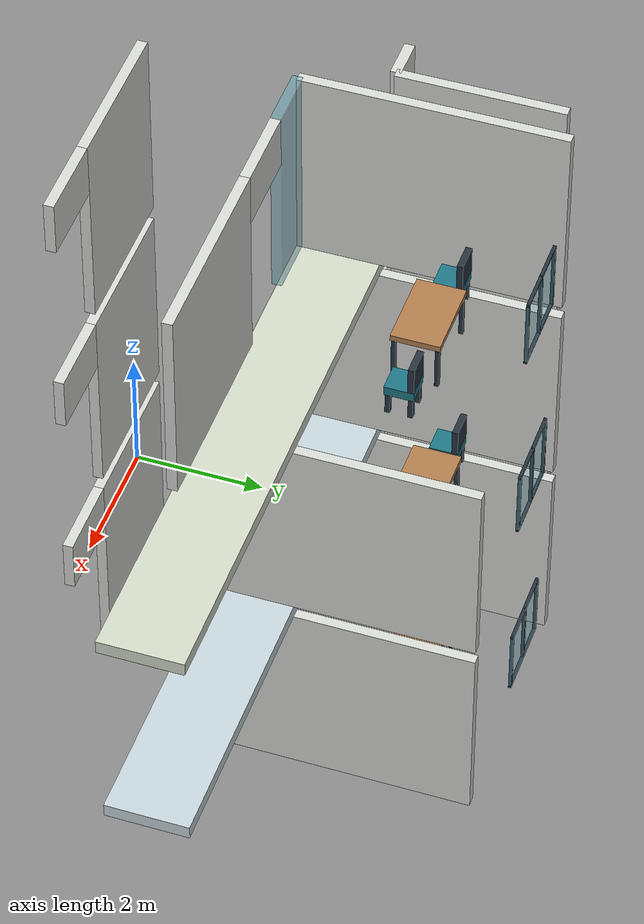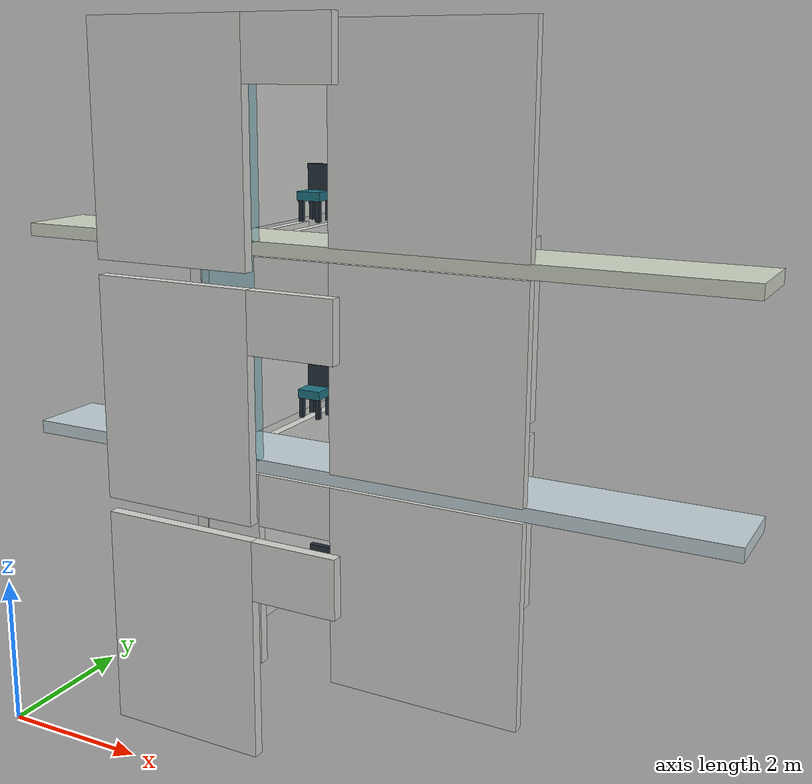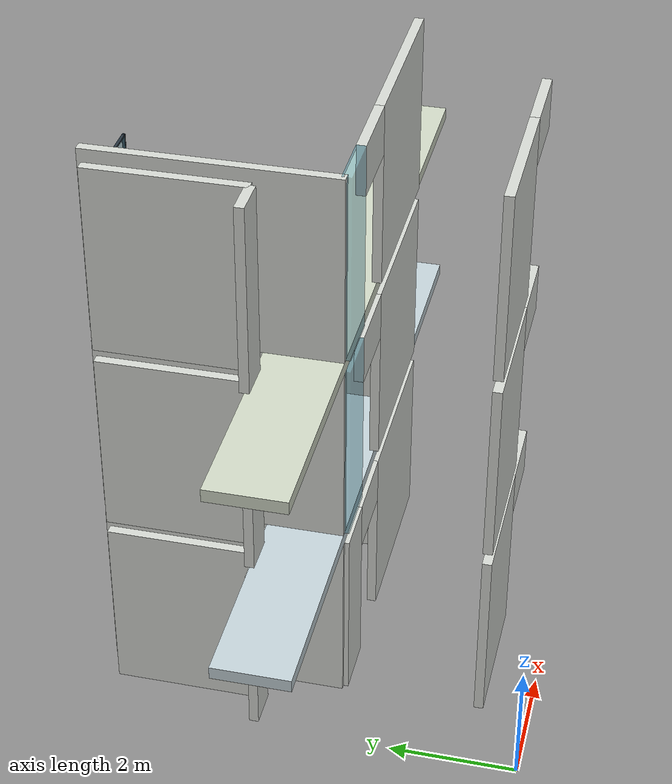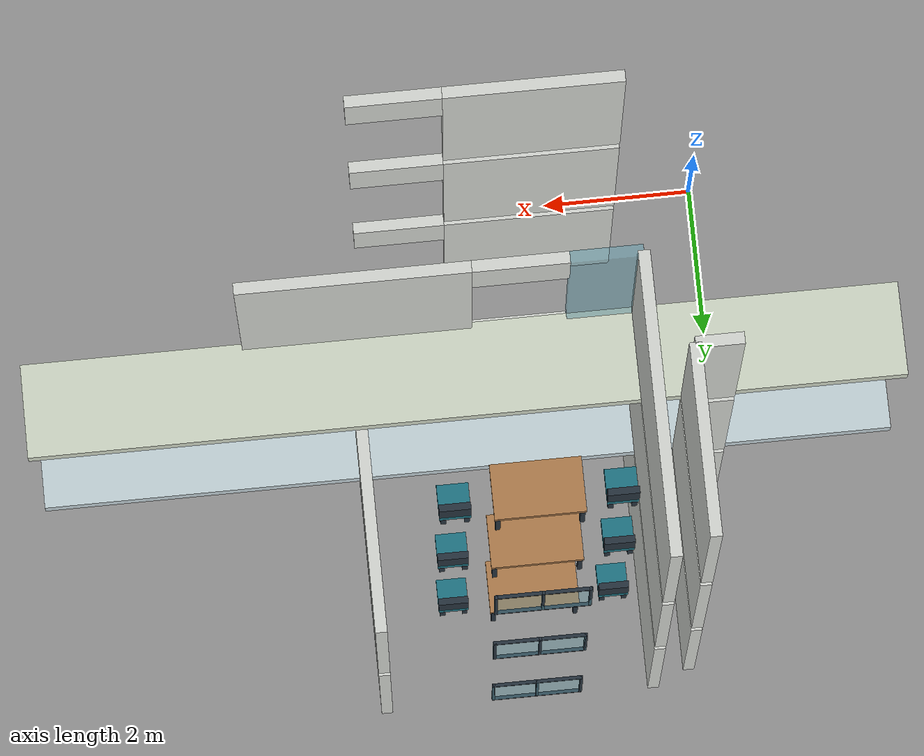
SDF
<sdf version="1.6">
 <world name="three_floor">
  <model name="f1_wall_025">
   <static>true</static>
   <pose>2.325 0.8 1.5 0 0 0</pose>
   <link name="f1_wall_025_link">
    <collision name="f1_wall_025_collision"><geometry><box><size>2.25 0.15 3</size></box></geometry></collision>
    <visual name="f1_wall_025_visual">
     <geometry><box><size>2.25 0.15 3</size></box></geometry>
     <material><ambient>.84 .85 .83 1</ambient><diffuse>.84 .85 .83 1</diffuse></material>
    </visual>
   </link>
  </model>
  <model name="f1_wall_034">
   <static>true</static>
   <pose>0.7 5.4 1.5 0 0 0</pose>
   <link name="f1_wall_034_link">
    <collision name="f1_wall_034_collision"><geometry><box><size>0.15 2.4 3</size></box></geometry></collision>
    <visual name="f1_wall_034_visual">
     <geometry><box><size>0.15 2.4 3</size></box></geometry>
     <material><ambient>.84 .85 .83 1</ambient><diffuse>.84 .85 .83 1</diffuse></material>
    </visual>
   </link>
  </model>
  <model name="f1_wall_037">
   <static>true</static>
   <pose>0.4 4.2 1.5 0 0 0</pose>
   <link name="f1_wall_037_link">
    <collision name="f1_wall_037_collision"><geometry><box><size>0.6 0.15 3</size></box></geometry></collision>
    <visual name="f1_wall_037_visual">
     <geometry><box><size>0.6 0.15 3</size></box></geometry>
     <material><ambient>.84 .85 .83 1</ambient><diffuse>.84 .85 .83 1</diffuse></material>
    </visual>
   </link>
  </model>
  <model name="f1_wall_038">
   <static>true</static>
   <pose>1.2 4.9 1.5 0 0 0</pose>
   <link name="f1_wall_038_link">
    <collision name="f1_wall_038_collision"><geometry><box><size>0.15 3.8 3</size></box></geometry></collision>
    <visual name="f1_wall_038_visual">
     <geometry><box><size>0.15 3.8 3</size></box></geometry>
     <material><ambient>.84 .85 .83 1</ambient><diffuse>.84 .85 .83 1</diffuse></material>
    </visual>
   </link>
  </model>
  <model name="f1_wall_039">
   <static>true</static>
   <pose>4.8 4.9 1.5 0 0 0</pose>
   <link name="f1_wall_039_link">
    <collision name="f1_wall_039_collision"><geometry><box><size>0.15 3.8 3</size></box></geometry></collision>
    <visual name="f1_wall_039_visual">
     <geometry><box><size>0.15 3.8 3</size></box></geometry>
     <material><ambient>.84 .85 .83 1</ambient><diffuse>.84 .85 .83 1</diffuse></material>
    </visual>
   </link>
  </model>
  <model name="f1_wall_040">
   <static>true</static>
   <pose>1.65 3 1.5 0 0 0</pose>
   <link name="f1_wall_040_link">
    <collision name="f1_wall_040_collision"><geometry><box><size>0.9 0.15 3</size></box></geometry></collision>
    <visual name="f1_wall_040_visual">
     <geometry><box><size>0.9 0.15 3</size></box></geometry>
     <material><ambient>.84 .85 .83 1</ambient><diffuse>.84 .85 .83 1</diffuse></material>
    </visual>
   </link>
  </model>
  <model name="f1_wall_041">
   <static>true</static>
   <pose>4.75 3 1.5 0 0 0</pose>
   <link name="f1_wall_041_link">
    <collision name="f1_wall_041_collision"><geometry><box><size>2.9 0.15 3</size></box></geometry></collision>
    <visual name="f1_wall_041_visual">
     <geometry><box><size>2.9 0.15 3</size></box></geometry>
     <material><ambient>.84 .85 .83 1</ambient><diffuse>.84 .85 .83 1</diffuse></material>
    </visual>
   </link>
  </model>
  <model name="f1_lintel_south_east_1">
   <static>true</static>
   <pose>4.05 0.8 2.6 0 0 0</pose>
   <link name="f1_lintel_south_east_1_link">
    <collision name="f1_lintel_south_east_1_collision">
     <geometry><box><size>1.2 0.15 0.8</size></box></geometry>
    </collision>
    <visual name="f1_lintel_south_east_1_visual">
     <geometry><box><size>1.2 0.15 0.8</size></box></geometry>
     <material><ambient>.84 .85 .83 1</ambient><diffuse>.84 .85 .83 1</diffuse></material>
    </visual>
   </link>
  </model>
  <model name="f1_lintel_north_west">
   <static>true</static>
   <pose>2.7 3 2.6 0 0 0</pose>
   <link name="f1_lintel_north_west_link">
    <collision name="f1_lintel_north_west_collision">
     <geometry><box><size>1.2 0.15 0.8</size></box></geometry>
    </collision>
    <visual name="f1_lintel_north_west_visual">
     <geometry><box><size>1.2 0.15 0.8</size></box></geometry>
     <material><ambient>.84 .85 .83 1</ambient><diffuse>.84 .85 .83 1</diffuse></material>
    </visual>
   </link>
  </model>
  <model name="f2_slab_03">
   <static>true</static>
   <pose>3.45 3.6 3.1 0 0 0</pose>
   <link name="f2_slab_03_link">
    <collision name="f2_slab_03_collision"><geometry><box><size>11.1 1.2 0.2</size></box></geometry></collision>
    <visual name="f2_slab_03_visual">
     <geometry><box><size>11.1 1.2 0.2</size></box></geometry>
     <material><ambient>0.77 0.83 0.85 1</ambient><diffuse>0.77 0.83 0.85 1</diffuse></material>
    </visual>
   </link>
  </model>
  <model name="f2_wall_025">
   <static>true</static>
   <pose>2.325 0.8 4.7 0 0 0</pose>
   <link name="f2_wall_025_link">
    <collision name="f2_wall_025_collision"><geometry><box><size>2.25 0.15 3</size></box></geometry></collision>
    <visual name="f2_wall_025_visual">
     <geometry><box><size>2.25 0.15 3</size></box></geometry>
     <material><ambient>.84 .85 .83 1</ambient><diffuse>.84 .85 .83 1</diffuse></material>
    </visual>
   </link>
  </model>
  <model name="f2_wall_034">
   <static>true</static>
   <pose>0.7 5.4 4.7 0 0 0</pose>
   <link name="f2_wall_034_link">
    <collision name="f2_wall_034_collision"><geometry><box><size>0.15 2.4 3</size></box></geometry></collision>
    <visual name="f2_wall_034_visual">
     <geometry><box><size>0.15 2.4 3</size></box></geometry>
     <material><ambient>.84 .85 .83 1</ambient><diffuse>.84 .85 .83 1</diffuse></material>
    </visual>
   </link>
  </model>
  <model name="f2_wall_037">
   <static>true</static>
   <pose>0.4 4.2 4.7 0 0 0</pose>
   <link name="f2_wall_037_link">
    <collision name="f2_wall_037_collision"><geometry><box><size>0.6 0.15 3</size></box></geometry></collision>
    <visual name="f2_wall_037_visual">
     <geometry><box><size>0.6 0.15 3</size></box></geometry>
     <material><ambient>.84 .85 .83 1</ambient><diffuse>.84 .85 .83 1</diffuse></material>
    </visual>
   </link>
  </model>
  <model name="f2_wall_038">
   <static>true</static>
   <pose>1.2 4.9 4.7 0 0 0</pose>
   <link name="f2_wall_038_link">
    <collision name="f2_wall_038_collision"><geometry><box><size>0.15 3.8 3</size></box></geometry></collision>
    <visual name="f2_wall_038_visual">
     <geometry><box><size>0.15 3.8 3</size></box></geometry>
     <material><ambient>.84 .85 .83 1</ambient><diffuse>.84 .85 .83 1</diffuse></material>
    </visual>
   </link>
  </model>
  <model name="f2_wall_039">
   <static>true</static>
   <pose>4.8 4.9 4.7 0 0 0</pose>
   <link name="f2_wall_039_link">
    <collision name="f2_wall_039_collision"><geometry><box><size>0.15 3.8 3</size></box></geometry></collision>
    <visual name="f2_wall_039_visual">
     <geometry><box><size>0.15 3.8 3</size></box></geometry>
     <material><ambient>.84 .85 .83 1</ambient><diffuse>.84 .85 .83 1</diffuse></material>
    </visual>
   </link>
  </model>
  <model name="f2_wall_040">
   <static>true</static>
   <pose>1.65 3 4.7 0 0 0</pose>
   <link name="f2_wall_040_link">
    <collision name="f2_wall_040_collision"><geometry><box><size>0.9 0.15 3</size></box></geometry></collision>
    <visual name="f2_wall_040_visual">
     <geometry><box><size>0.9 0.15 3</size></box></geometry>
     <material><ambient>.38 .68 .76 1</ambient><diffuse>.38 .68 .76 1</diffuse></material>
     <transparency>.55</transparency>
    </visual>
   </link>
  </model>
  <model name="f2_wall_041">
   <static>true</static>
   <pose>4.75 3 4.7 0 0 0</pose>
   <link name="f2_wall_041_link">
    <collision name="f2_wall_041_collision"><geometry><box><size>2.9 0.15 3</size></box></geometry></collision>
    <visual name="f2_wall_041_visual">
     <geometry><box><size>2.9 0.15 3</size></box></geometry>
     <material><ambient>.84 .85 .83 1</ambient><diffuse>.84 .85 .83 1</diffuse></material>
    </visual>
   </link>
  </model>
  <model name="f2_lintel_south_east_1">
   <static>true</static>
   <pose>4.05 0.8 5.8 0 0 0</pose>
   <link name="f2_lintel_south_east_1_link">
    <collision name="f2_lintel_south_east_1_collision">
     <geometry><box><size>1.2 0.15 0.8</size></box></geometry>
    </collision>
    <visual name="f2_lintel_south_east_1_visual">
     <geometry><box><size>1.2 0.15 0.8</size></box></geometry>
     <material><ambient>.84 .85 .83 1</ambient><diffuse>.84 .85 .83 1</diffuse></material>
    </visual>
   </link>
  </model>
  <model name="f2_lintel_north_west">
   <static>true</static>
   <pose>2.7 3 5.8 0 0 0</pose>
   <link name="f2_lintel_north_west_link">
    <collision name="f2_lintel_north_west_collision">
     <geometry><box><size>1.2 0.15 0.8</size></box></geometry>
    </collision>
    <visual name="f2_lintel_north_west_visual">
     <geometry><box><size>1.2 0.15 0.8</size></box></geometry>
     <material><ambient>.84 .85 .83 1</ambient><diffuse>.84 .85 .83 1</diffuse></material>
    </visual>
   </link>
  </model>
  <model name="f3_slab_03">
   <static>true</static>
   <pose>3.45 3.6 6.3 0 0 0</pose>
   <link name="f3_slab_03_link">
    <collision name="f3_slab_03_collision"><geometry><box><size>11.1 1.2 0.2</size></box></geometry></collision>
    <visual name="f3_slab_03_visual">
     <geometry><box><size>11.1 1.2 0.2</size></box></geometry>
     <material><ambient>0.82 0.85 0.78 1</ambient><diffuse>0.82 0.85 0.78 1</diffuse></material>
    </visual>
   </link>
  </model>
  <model name="f3_wall_025">
   <static>true</static>
   <pose>2.325 0.8 7.9 0 0 0</pose>
   <link name="f3_wall_025_link">
    <collision name="f3_wall_025_collision"><geometry><box><size>2.25 0.15 3</size></box></geometry></collision>
    <visual name="f3_wall_025_visual">
     <geometry><box><size>2.25 0.15 3</size></box></geometry>
     <material><ambient>.84 .85 .83 1</ambient><diffuse>.84 .85 .83 1</diffuse></material>
    </visual>
   </link>
  </model>
  <model name="f3_wall_034">
   <static>true</static>
   <pose>0.7 5.4 7.9 0 0 0</pose>
   <link name="f3_wall_034_link">
    <collision name="f3_wall_034_collision"><geometry><box><size>0.15 2.4 3</size></box></geometry></collision>
    <visual name="f3_wall_034_visual">
     <geometry><box><size>0.15 2.4 3</size></box></geometry>
     <material><ambient>.84 .85 .83 1</ambient><diffuse>.84 .85 .83 1</diffuse></material>
    </visual>
   </link>
  </model>
  <model name="f3_wall_037">
   <static>true</static>
   <pose>0.4 4.2 7.9 0 0 0</pose>
   <link name="f3_wall_037_link">
    <collision name="f3_wall_037_collision"><geometry><box><size>0.6 0.15 3</size></box></geometry></collision>
    <visual name="f3_wall_037_visual">
     <geometry><box><size>0.6 0.15 3</size></box></geometry>
     <material><ambient>.84 .85 .83 1</ambient><diffuse>.84 .85 .83 1</diffuse></material>
    </visual>
   </link>
  </model>
  <model name="f3_wall_038">
   <static>true</static>
   <pose>1.2 4.9 7.9 0 0 0</pose>
   <link name="f3_wall_038_link">
    <collision name="f3_wall_038_collision"><geometry><box><size>0.15 3.8 3</size></box></geometry></collision>
    <visual name="f3_wall_038_visual">
     <geometry><box><size>0.15 3.8 3</size></box></geometry>
     <material><ambient>.84 .85 .83 1</ambient><diffuse>.84 .85 .83 1</diffuse></material>
    </visual>
   </link>
  </model>
  <model name="f3_wall_040">
   <static>true</static>
   <pose>1.65 3 7.9 0 0 0</pose>
   <link name="f3_wall_040_link">
    <collision name="f3_wall_040_collision"><geometry><box><size>0.9 0.15 3</size></box></geometry></collision>
    <visual name="f3_wall_040_visual">
     <geometry><box><size>0.9 0.15 3</size></box></geometry>
     <material><ambient>.38 .68 .76 1</ambient><diffuse>.38 .68 .76 1</diffuse></material>
     <transparency>.55</transparency>
    </visual>
   </link>
  </model>
  <model name="f3_wall_041">
   <static>true</static>
   <pose>4.75 3 7.9 0 0 0</pose>
   <link name="f3_wall_041_link">
    <collision name="f3_wall_041_collision"><geometry><box><size>2.9 0.15 3</size></box></geometry></collision>
    <visual name="f3_wall_041_visual">
     <geometry><box><size>2.9 0.15 3</size></box></geometry>
     <material><ambient>.84 .85 .83 1</ambient><diffuse>.84 .85 .83 1</diffuse></material>
    </visual>
   </link>
  </model>
  <model name="f3_lintel_south_east_1">
   <static>true</static>
   <pose>4.05 0.8 9 0 0 0</pose>
   <link name="f3_lintel_south_east_1_link">
    <collision name="f3_lintel_south_east_1_collision">
     <geometry><box><size>1.2 0.15 0.8</size></box></geometry>
    </collision>
    <visual name="f3_lintel_south_east_1_visual">
     <geometry><box><size>1.2 0.15 0.8</size></box></geometry>
     <material><ambient>.84 .85 .83 1</ambient><diffuse>.84 .85 .83 1</diffuse></material>
    </visual>
   </link>
  </model>
  <model name="f3_lintel_north_west">
   <static>true</static>
   <pose>2.7 3 9 0 0 0</pose>
   <link name="f3_lintel_north_west_link">
    <collision name="f3_lintel_north_west_collision">
     <geometry><box><size>1.2 0.15 0.8</size></box></geometry>
    </collision>
    <visual name="f3_lintel_north_west_visual">
     <geometry><box><size>1.2 0.15 0.8</size></box></geometry>
     <material><ambient>.84 .85 .83 1</ambient><diffuse>.84 .85 .83 1</diffuse></material>
    </visual>
   </link>
  </model>
  <model name="f1_s2_window_06">
   <static>true</static>
   <pose>2.8 6.9 1.475 0 0 0</pose>
   <link name="f1_s2_window_06_link">
    <collision name="f1_s2_window_06_link_glass_collision">
     <geometry><box><size>1.2 0.045 1.05</size></box></geometry>
    </collision>
    <visual name="f1_s2_window_06_link_glass_visual">
     <geometry><box><size>1.2 0.045 1.05</size></box></geometry>
     <material><ambient>0.44 0.76 0.83 1</ambient><diffuse>0.44 0.76 0.83 1</diffuse></material>
     <transparency>0.65</transparency>
    </visual>
    <collision name="f1_s2_window_06_link_mullion_-0.58_collision">
     <pose>-0.58 0 0 0 0 0</pose>
     <geometry><box><size>0.035 0.045 1.05</size></box></geometry>
    </collision>
    <visual name="f1_s2_window_06_link_mullion_-0.58_visual">
     <pose>-0.58 0 0 0 0 0</pose>
     <geometry><box><size>0.035 0.045 1.05</size></box></geometry>
     <material><ambient>0.15 0.2 0.24 1</ambient><diffuse>0.15 0.2 0.24 1</diffuse></material>
    </visual>
    <collision name="f1_s2_window_06_link_mullion_0.58_collision">
     <pose>0.58 0 0 0 0 0</pose>
     <geometry><box><size>0.035 0.045 1.05</size></box></geometry>
    </collision>
    <visual name="f1_s2_window_06_link_mullion_0.58_visual">
     <pose>0.58 0 0 0 0 0</pose>
     <geometry><box><size>0.035 0.045 1.05</size></box></geometry>
     <material><ambient>0.15 0.2 0.24 1</ambient><diffuse>0.15 0.2 0.24 1</diffuse></material>
    </visual>
    <collision name="f1_s2_window_06_link_mullion_0_collision">
     <geometry><box><size>0.035 0.045 1.05</size></box></geometry>
    </collision>
    <visual name="f1_s2_window_06_link_mullion_0_visual">
     <geometry><box><size>0.035 0.045 1.05</size></box></geometry>
     <material><ambient>0.15 0.2 0.24 1</ambient><diffuse>0.15 0.2 0.24 1</diffuse></material>
    </visual>
    <collision name="f1_s2_window_06_link_frame_-0.51_collision">
     <pose>0 0 -0.51 0 0 0</pose>
     <geometry><box><size>1.2 0.045 0.03</size></box></geometry>
    </collision>
    <visual name="f1_s2_window_06_link_frame_-0.51_visual">
     <pose>0 0 -0.51 0 0 0</pose>
     <geometry><box><size>1.2 0.045 0.03</size></box></geometry>
     <material><ambient>0.15 0.2 0.24 1</ambient><diffuse>0.15 0.2 0.24 1</diffuse></material>
    </visual>
    <collision name="f1_s2_window_06_link_frame_0.51_collision">
     <pose>0 0 0.51 0 0 0</pose>
     <geometry><box><size>1.2 0.045 0.03</size></box></geometry>
    </collision>
    <visual name="f1_s2_window_06_link_frame_0.51_visual">
     <pose>0 0 0.51 0 0 0</pose>
     <geometry><box><size>1.2 0.045 0.03</size></box></geometry>
     <material><ambient>0.15 0.2 0.24 1</ambient><diffuse>0.15 0.2 0.24 1</diffuse></material>
    </visual>
   </link>
  </model>
  <model name="f2_s2_window_17">
   <static>true</static>
   <pose>2.8 6.9 4.675 0 0 0</pose>
   <link name="f2_s2_window_17_link">
    <collision name="f2_s2_window_17_link_glass_collision">
     <geometry><box><size>1.2 0.045 1.05</size></box></geometry>
    </collision>
    <visual name="f2_s2_window_17_link_glass_visual">
     <geometry><box><size>1.2 0.045 1.05</size></box></geometry>
     <material><ambient>0.44 0.76 0.83 1</ambient><diffuse>0.44 0.76 0.83 1</diffuse></material>
     <transparency>0.65</transparency>
    </visual>
    <collision name="f2_s2_window_17_link_mullion_-0.58_collision">
     <pose>-0.58 0 0 0 0 0</pose>
     <geometry><box><size>0.035 0.045 1.05</size></box></geometry>
    </collision>
    <visual name="f2_s2_window_17_link_mullion_-0.58_visual">
     <pose>-0.58 0 0 0 0 0</pose>
     <geometry><box><size>0.035 0.045 1.05</size></box></geometry>
     <material><ambient>0.15 0.2 0.24 1</ambient><diffuse>0.15 0.2 0.24 1</diffuse></material>
    </visual>
    <collision name="f2_s2_window_17_link_mullion_0.58_collision">
     <pose>0.58 0 0 0 0 0</pose>
     <geometry><box><size>0.035 0.045 1.05</size></box></geometry>
    </collision>
    <visual name="f2_s2_window_17_link_mullion_0.58_visual">
     <pose>0.58 0 0 0 0 0</pose>
     <geometry><box><size>0.035 0.045 1.05</size></box></geometry>
     <material><ambient>0.15 0.2 0.24 1</ambient><diffuse>0.15 0.2 0.24 1</diffuse></material>
    </visual>
    <collision name="f2_s2_window_17_link_mullion_0_collision">
     <geometry><box><size>0.035 0.045 1.05</size></box></geometry>
    </collision>
    <visual name="f2_s2_window_17_link_mullion_0_visual">
     <geometry><box><size>0.035 0.045 1.05</size></box></geometry>
     <material><ambient>0.15 0.2 0.24 1</ambient><diffuse>0.15 0.2 0.24 1</diffuse></material>
    </visual>
    <collision name="f2_s2_window_17_link_frame_-0.51_collision">
     <pose>0 0 -0.51 0 0 0</pose>
     <geometry><box><size>1.2 0.045 0.03</size></box></geometry>
    </collision>
    <visual name="f2_s2_window_17_link_frame_-0.51_visual">
     <pose>0 0 -0.51 0 0 0</pose>
     <geometry><box><size>1.2 0.045 0.03</size></box></geometry>
     <material><ambient>0.15 0.2 0.24 1</ambient><diffuse>0.15 0.2 0.24 1</diffuse></material>
    </visual>
    <collision name="f2_s2_window_17_link_frame_0.51_collision">
     <pose>0 0 0.51 0 0 0</pose>
     <geometry><box><size>1.2 0.045 0.03</size></box></geometry>
    </collision>
    <visual name="f2_s2_window_17_link_frame_0.51_visual">
     <pose>0 0 0.51 0 0 0</pose>
     <geometry><box><size>1.2 0.045 0.03</size></box></geometry>
     <material><ambient>0.15 0.2 0.24 1</ambient><diffuse>0.15 0.2 0.24 1</diffuse></material>
    </visual>
   </link>
  </model>
  <model name="f3_s2_window_29">
   <static>true</static>
   <pose>2.8 6.9 7.875 0 0 0</pose>
   <link name="f3_s2_window_29_link">
    <collision name="f3_s2_window_29_link_glass_collision">
     <geometry><box><size>1.2 0.045 1.05</size></box></geometry>
    </collision>
    <visual name="f3_s2_window_29_link_glass_visual">
     <geometry><box><size>1.2 0.045 1.05</size></box></geometry>
     <material><ambient>0.44 0.76 0.83 1</ambient><diffuse>0.44 0.76 0.83 1</diffuse></material>
     <transparency>0.65</transparency>
    </visual>
    <collision name="f3_s2_window_29_link_mullion_-0.58_collision">
     <pose>-0.58 0 0 0 0 0</pose>
     <geometry><box><size>0.035 0.045 1.05</size></box></geometry>
    </collision>
    <visual name="f3_s2_window_29_link_mullion_-0.58_visual">
     <pose>-0.58 0 0 0 0 0</pose>
     <geometry><box><size>0.035 0.045 1.05</size></box></geometry>
     <material><ambient>0.15 0.2 0.24 1</ambient><diffuse>0.15 0.2 0.24 1</diffuse></material>
    </visual>
    <collision name="f3_s2_window_29_link_mullion_0.58_collision">
     <pose>0.58 0 0 0 0 0</pose>
     <geometry><box><size>0.035 0.045 1.05</size></box></geometry>
    </collision>
    <visual name="f3_s2_window_29_link_mullion_0.58_visual">
     <pose>0.58 0 0 0 0 0</pose>
     <geometry><box><size>0.035 0.045 1.05</size></box></geometry>
     <material><ambient>0.15 0.2 0.24 1</ambient><diffuse>0.15 0.2 0.24 1</diffuse></material>
    </visual>
    <collision name="f3_s2_window_29_link_mullion_0_collision">
     <geometry><box><size>0.035 0.045 1.05</size></box></geometry>
    </collision>
    <visual name="f3_s2_window_29_link_mullion_0_visual">
     <geometry><box><size>0.035 0.045 1.05</size></box></geometry>
     <material><ambient>0.15 0.2 0.24 1</ambient><diffuse>0.15 0.2 0.24 1</diffuse></material>
    </visual>
    <collision name="f3_s2_window_29_link_frame_-0.51_collision">
     <pose>0 0 -0.51 0 0 0</pose>
     <geometry><box><size>1.2 0.045 0.03</size></box></geometry>
    </collision>
    <visual name="f3_s2_window_29_link_frame_-0.51_visual">
     <pose>0 0 -0.51 0 0 0</pose>
     <geometry><box><size>1.2 0.045 0.03</size></box></geometry>
     <material><ambient>0.15 0.2 0.24 1</ambient><diffuse>0.15 0.2 0.24 1</diffuse></material>
    </visual>
    <collision name="f3_s2_window_29_link_frame_0.51_collision">
     <pose>0 0 0.51 0 0 0</pose>
     <geometry><box><size>1.2 0.045 0.03</size></box></geometry>
    </collision>
    <visual name="f3_s2_window_29_link_frame_0.51_visual">
     <pose>0 0 0.51 0 0 0</pose>
     <geometry><box><size>1.2 0.045 0.03</size></box></geometry>
     <material><ambient>0.15 0.2 0.24 1</ambient><diffuse>0.15 0.2 0.24 1</diffuse></material>
    </visual>
   </link>
  </model>
  <model name="f1_s2_furniture_17_table">
   <static>true</static>
   <pose>2.7 5.35 0 0 0 0</pose>
   <link name="f1_s2_furniture_17_table_link">
    <collision name="f1_s2_furniture_17_table_link_top_collision">
     <pose>0 0 0.695 0 0 0</pose>
     <geometry><box><size>1.2 0.7 0.09</size></box></geometry>
    </collision>
    <visual name="f1_s2_furniture_17_table_link_top_visual">
     <pose>0 0 0.695 0 0 0</pose>
     <geometry><box><size>1.2 0.7 0.09</size></box></geometry>
     <material><ambient>0.69 0.49 0.3 1</ambient><diffuse>0.69 0.49 0.3 1</diffuse></material>
    </visual>
    <collision name="f1_s2_furniture_17_table_link_leg_-0.5549999999999999_-0.305_collision">
     <pose>-0.555 -0.305 0.325 0 0 0</pose>
     <geometry><box><size>0.06 0.06 0.65</size></box></geometry>
    </collision>
    <visual name="f1_s2_furniture_17_table_link_leg_-0.5549999999999999_-0.305_visual">
     <pose>-0.555 -0.305 0.325 0 0 0</pose>
     <geometry><box><size>0.06 0.06 0.65</size></box></geometry>
     <material><ambient>0.15 0.2 0.24 1</ambient><diffuse>0.15 0.2 0.24 1</diffuse></material>
    </visual>
    <collision name="f1_s2_furniture_17_table_link_leg_-0.5549999999999999_0.305_collision">
     <pose>-0.555 0.305 0.325 0 0 0</pose>
     <geometry><box><size>0.06 0.06 0.65</size></box></geometry>
    </collision>
    <visual name="f1_s2_furniture_17_table_link_leg_-0.5549999999999999_0.305_visual">
     <pose>-0.555 0.305 0.325 0 0 0</pose>
     <geometry><box><size>0.06 0.06 0.65</size></box></geometry>
     <material><ambient>0.15 0.2 0.24 1</ambient><diffuse>0.15 0.2 0.24 1</diffuse></material>
    </visual>
    <collision name="f1_s2_furniture_17_table_link_leg_0.5549999999999999_-0.305_collision">
     <pose>0.555 -0.305 0.325 0 0 0</pose>
     <geometry><box><size>0.06 0.06 0.65</size></box></geometry>
    </collision>
    <visual name="f1_s2_furniture_17_table_link_leg_0.5549999999999999_-0.305_visual">
     <pose>0.555 -0.305 0.325 0 0 0</pose>
     <geometry><box><size>0.06 0.06 0.65</size></box></geometry>
     <material><ambient>0.15 0.2 0.24 1</ambient><diffuse>0.15 0.2 0.24 1</diffuse></material>
    </visual>
    <collision name="f1_s2_furniture_17_table_link_leg_0.5549999999999999_0.305_collision">
     <pose>0.555 0.305 0.325 0 0 0</pose>
     <geometry><box><size>0.06 0.06 0.65</size></box></geometry>
    </collision>
    <visual name="f1_s2_furniture_17_table_link_leg_0.5549999999999999_0.305_visual">
     <pose>0.555 0.305 0.325 0 0 0</pose>
     <geometry><box><size>0.06 0.06 0.65</size></box></geometry>
     <material><ambient>0.15 0.2 0.24 1</ambient><diffuse>0.15 0.2 0.24 1</diffuse></material>
    </visual>
   </link>
  </model>
  <model name="f1_s2_furniture_18_seat">
   <static>true</static>
   <pose>1.62 5.35 0 0 0 0</pose>
   <link name="f1_s2_furniture_18_seat_link">
    <collision name="f1_s2_furniture_18_seat_link_seat_collision">
     <pose>0 0 0.4 0 0 0</pose>
     <geometry><box><size>0.4 0.42 0.14</size></box></geometry>
    </collision>
    <visual name="f1_s2_furniture_18_seat_link_seat_visual">
     <pose>0 0 0.4 0 0 0</pose>
     <geometry><box><size>0.4 0.42 0.14</size></box></geometry>
     <material><ambient>0.12 0.46 0.52 1</ambient><diffuse>0.12 0.46 0.52 1</diffuse></material>
    </visual>
    <collision name="f1_s2_furniture_18_seat_link_back_collision">
     <pose>0 0.165 0.675 0 0 0</pose>
     <geometry><box><size>0.4 0.09 0.41</size></box></geometry>
    </collision>
    <visual name="f1_s2_furniture_18_seat_link_back_visual">
     <pose>0 0.165 0.675 0 0 0</pose>
     <geometry><box><size>0.4 0.09 0.41</size></box></geometry>
     <material><ambient>0.15 0.2 0.24 1</ambient><diffuse>0.15 0.2 0.24 1</diffuse></material>
    </visual>
    <collision name="f1_s2_furniture_18_seat_link_leg_-0.15000000000000002_-0.15999999999999998_collision">
     <pose>-0.15 -0.16 0.165 0 0 0</pose>
     <geometry><box><size>0.07 0.07 0.33</size></box></geometry>
    </collision>
    <visual name="f1_s2_furniture_18_seat_link_leg_-0.15000000000000002_-0.15999999999999998_visual">
     <pose>-0.15 -0.16 0.165 0 0 0</pose>
     <geometry><box><size>0.07 0.07 0.33</size></box></geometry>
     <material><ambient>0.15 0.2 0.24 1</ambient><diffuse>0.15 0.2 0.24 1</diffuse></material>
    </visual>
    <collision name="f1_s2_furniture_18_seat_link_leg_-0.15000000000000002_0.15999999999999998_collision">
     <pose>-0.15 0.16 0.165 0 0 0</pose>
     <geometry><box><size>0.07 0.07 0.33</size></box></geometry>
    </collision>
    <visual name="f1_s2_furniture_18_seat_link_leg_-0.15000000000000002_0.15999999999999998_visual">
     <pose>-0.15 0.16 0.165 0 0 0</pose>
     <geometry><box><size>0.07 0.07 0.33</size></box></geometry>
     <material><ambient>0.15 0.2 0.24 1</ambient><diffuse>0.15 0.2 0.24 1</diffuse></material>
    </visual>
    <collision name="f1_s2_furniture_18_seat_link_leg_0.15000000000000002_-0.15999999999999998_collision">
     <pose>0.15 -0.16 0.165 0 0 0</pose>
     <geometry><box><size>0.07 0.07 0.33</size></box></geometry>
    </collision>
    <visual name="f1_s2_furniture_18_seat_link_leg_0.15000000000000002_-0.15999999999999998_visual">
     <pose>0.15 -0.16 0.165 0 0 0</pose>
     <geometry><box><size>0.07 0.07 0.33</size></box></geometry>
     <material><ambient>0.15 0.2 0.24 1</ambient><diffuse>0.15 0.2 0.24 1</diffuse></material>
    </visual>
    <collision name="f1_s2_furniture_18_seat_link_leg_0.15000000000000002_0.15999999999999998_collision">
     <pose>0.15 0.16 0.165 0 0 0</pose>
     <geometry><box><size>0.07 0.07 0.33</size></box></geometry>
    </collision>
    <visual name="f1_s2_furniture_18_seat_link_leg_0.15000000000000002_0.15999999999999998_visual">
     <pose>0.15 0.16 0.165 0 0 0</pose>
     <geometry><box><size>0.07 0.07 0.33</size></box></geometry>
     <material><ambient>0.15 0.2 0.24 1</ambient><diffuse>0.15 0.2 0.24 1</diffuse></material>
    </visual>
   </link>
  </model>
  <model name="f1_s2_furniture_19_seat">
   <static>true</static>
   <pose>3.78 5.35 0 0 0 0</pose>
   <link name="f1_s2_furniture_19_seat_link">
    <collision name="f1_s2_furniture_19_seat_link_seat_collision">
     <pose>0 0 0.4 0 0 0</pose>
     <geometry><box><size>0.4 0.42 0.14</size></box></geometry>
    </collision>
    <visual name="f1_s2_furniture_19_seat_link_seat_visual">
     <pose>0 0 0.4 0 0 0</pose>
     <geometry><box><size>0.4 0.42 0.14</size></box></geometry>
     <material><ambient>0.12 0.46 0.52 1</ambient><diffuse>0.12 0.46 0.52 1</diffuse></material>
    </visual>
    <collision name="f1_s2_furniture_19_seat_link_back_collision">
     <pose>0 0.165 0.675 0 0 0</pose>
     <geometry><box><size>0.4 0.09 0.41</size></box></geometry>
    </collision>
    <visual name="f1_s2_furniture_19_seat_link_back_visual">
     <pose>0 0.165 0.675 0 0 0</pose>
     <geometry><box><size>0.4 0.09 0.41</size></box></geometry>
     <material><ambient>0.15 0.2 0.24 1</ambient><diffuse>0.15 0.2 0.24 1</diffuse></material>
    </visual>
    <collision name="f1_s2_furniture_19_seat_link_leg_-0.15000000000000002_-0.15999999999999998_collision">
     <pose>-0.15 -0.16 0.165 0 0 0</pose>
     <geometry><box><size>0.07 0.07 0.33</size></box></geometry>
    </collision>
    <visual name="f1_s2_furniture_19_seat_link_leg_-0.15000000000000002_-0.15999999999999998_visual">
     <pose>-0.15 -0.16 0.165 0 0 0</pose>
     <geometry><box><size>0.07 0.07 0.33</size></box></geometry>
     <material><ambient>0.15 0.2 0.24 1</ambient><diffuse>0.15 0.2 0.24 1</diffuse></material>
    </visual>
    <collision name="f1_s2_furniture_19_seat_link_leg_-0.15000000000000002_0.15999999999999998_collision">
     <pose>-0.15 0.16 0.165 0 0 0</pose>
     <geometry><box><size>0.07 0.07 0.33</size></box></geometry>
    </collision>
    <visual name="f1_s2_furniture_19_seat_link_leg_-0.15000000000000002_0.15999999999999998_visual">
     <pose>-0.15 0.16 0.165 0 0 0</pose>
     <geometry><box><size>0.07 0.07 0.33</size></box></geometry>
     <material><ambient>0.15 0.2 0.24 1</ambient><diffuse>0.15 0.2 0.24 1</diffuse></material>
    </visual>
    <collision name="f1_s2_furniture_19_seat_link_leg_0.15000000000000002_-0.15999999999999998_collision">
     <pose>0.15 -0.16 0.165 0 0 0</pose>
     <geometry><box><size>0.07 0.07 0.33</size></box></geometry>
    </collision>
    <visual name="f1_s2_furniture_19_seat_link_leg_0.15000000000000002_-0.15999999999999998_visual">
     <pose>0.15 -0.16 0.165 0 0 0</pose>
     <geometry><box><size>0.07 0.07 0.33</size></box></geometry>
     <material><ambient>0.15 0.2 0.24 1</ambient><diffuse>0.15 0.2 0.24 1</diffuse></material>
    </visual>
    <collision name="f1_s2_furniture_19_seat_link_leg_0.15000000000000002_0.15999999999999998_collision">
     <pose>0.15 0.16 0.165 0 0 0</pose>
     <geometry><box><size>0.07 0.07 0.33</size></box></geometry>
    </collision>
    <visual name="f1_s2_furniture_19_seat_link_leg_0.15000000000000002_0.15999999999999998_visual">
     <pose>0.15 0.16 0.165 0 0 0</pose>
     <geometry><box><size>0.07 0.07 0.33</size></box></geometry>
     <material><ambient>0.15 0.2 0.24 1</ambient><diffuse>0.15 0.2 0.24 1</diffuse></material>
    </visual>
   </link>
  </model>
  <model name="f2_s2_furniture_46_table">
   <static>true</static>
   <pose>2.7 5.35 3.2 0 0 0</pose>
   <link name="f2_s2_furniture_46_table_link">
    <collision name="f2_s2_furniture_46_table_link_top_collision">
     <pose>0 0 0.705 0 0 0</pose>
     <geometry><box><size>1.2 0.7 0.09</size></box></geometry>
    </collision>
    <visual name="f2_s2_furniture_46_table_link_top_visual">
     <pose>0 0 0.705 0 0 0</pose>
     <geometry><box><size>1.2 0.7 0.09</size></box></geometry>
     <material><ambient>0.69 0.49 0.3 1</ambient><diffuse>0.69 0.49 0.3 1</diffuse></material>
    </visual>
    <collision name="f2_s2_furniture_46_table_link_leg_-0.5549999999999999_-0.305_collision">
     <pose>-0.555 -0.305 0.33 0 0 0</pose>
     <geometry><box><size>0.06 0.06 0.66</size></box></geometry>
    </collision>
    <visual name="f2_s2_furniture_46_table_link_leg_-0.5549999999999999_-0.305_visual">
     <pose>-0.555 -0.305 0.33 0 0 0</pose>
     <geometry><box><size>0.06 0.06 0.66</size></box></geometry>
     <material><ambient>0.15 0.2 0.24 1</ambient><diffuse>0.15 0.2 0.24 1</diffuse></material>
    </visual>
    <collision name="f2_s2_furniture_46_table_link_leg_-0.5549999999999999_0.305_collision">
     <pose>-0.555 0.305 0.33 0 0 0</pose>
     <geometry><box><size>0.06 0.06 0.66</size></box></geometry>
    </collision>
    <visual name="f2_s2_furniture_46_table_link_leg_-0.5549999999999999_0.305_visual">
     <pose>-0.555 0.305 0.33 0 0 0</pose>
     <geometry><box><size>0.06 0.06 0.66</size></box></geometry>
     <material><ambient>0.15 0.2 0.24 1</ambient><diffuse>0.15 0.2 0.24 1</diffuse></material>
    </visual>
    <collision name="f2_s2_furniture_46_table_link_leg_0.5549999999999999_-0.305_collision">
     <pose>0.555 -0.305 0.33 0 0 0</pose>
     <geometry><box><size>0.06 0.06 0.66</size></box></geometry>
    </collision>
    <visual name="f2_s2_furniture_46_table_link_leg_0.5549999999999999_-0.305_visual">
     <pose>0.555 -0.305 0.33 0 0 0</pose>
     <geometry><box><size>0.06 0.06 0.66</size></box></geometry>
     <material><ambient>0.15 0.2 0.24 1</ambient><diffuse>0.15 0.2 0.24 1</diffuse></material>
    </visual>
    <collision name="f2_s2_furniture_46_table_link_leg_0.5549999999999999_0.305_collision">
     <pose>0.555 0.305 0.33 0 0 0</pose>
     <geometry><box><size>0.06 0.06 0.66</size></box></geometry>
    </collision>
    <visual name="f2_s2_furniture_46_table_link_leg_0.5549999999999999_0.305_visual">
     <pose>0.555 0.305 0.33 0 0 0</pose>
     <geometry><box><size>0.06 0.06 0.66</size></box></geometry>
     <material><ambient>0.15 0.2 0.24 1</ambient><diffuse>0.15 0.2 0.24 1</diffuse></material>
    </visual>
   </link>
  </model>
  <model name="f2_s2_furniture_47_seat">
   <static>true</static>
   <pose>1.62 5.35 3.2 0 0 0</pose>
   <link name="f2_s2_furniture_47_seat_link">
    <collision name="f2_s2_furniture_47_seat_link_seat_collision">
     <pose>0 0 0.4 0 0 0</pose>
     <geometry><box><size>0.4 0.42 0.14</size></box></geometry>
    </collision>
    <visual name="f2_s2_furniture_47_seat_link_seat_visual">
     <pose>0 0 0.4 0 0 0</pose>
     <geometry><box><size>0.4 0.42 0.14</size></box></geometry>
     <material><ambient>0.12 0.46 0.52 1</ambient><diffuse>0.12 0.46 0.52 1</diffuse></material>
    </visual>
    <collision name="f2_s2_furniture_47_seat_link_back_collision">
     <pose>0 0.165 0.675 0 0 0</pose>
     <geometry><box><size>0.4 0.09 0.41</size></box></geometry>
    </collision>
    <visual name="f2_s2_furniture_47_seat_link_back_visual">
     <pose>0 0.165 0.675 0 0 0</pose>
     <geometry><box><size>0.4 0.09 0.41</size></box></geometry>
     <material><ambient>0.15 0.2 0.24 1</ambient><diffuse>0.15 0.2 0.24 1</diffuse></material>
    </visual>
    <collision name="f2_s2_furniture_47_seat_link_leg_-0.15000000000000002_-0.15999999999999998_collision">
     <pose>-0.15 -0.16 0.165 0 0 0</pose>
     <geometry><box><size>0.07 0.07 0.33</size></box></geometry>
    </collision>
    <visual name="f2_s2_furniture_47_seat_link_leg_-0.15000000000000002_-0.15999999999999998_visual">
     <pose>-0.15 -0.16 0.165 0 0 0</pose>
     <geometry><box><size>0.07 0.07 0.33</size></box></geometry>
     <material><ambient>0.15 0.2 0.24 1</ambient><diffuse>0.15 0.2 0.24 1</diffuse></material>
    </visual>
    <collision name="f2_s2_furniture_47_seat_link_leg_-0.15000000000000002_0.15999999999999998_collision">
     <pose>-0.15 0.16 0.165 0 0 0</pose>
     <geometry><box><size>0.07 0.07 0.33</size></box></geometry>
    </collision>
    <visual name="f2_s2_furniture_47_seat_link_leg_-0.15000000000000002_0.15999999999999998_visual">
     <pose>-0.15 0.16 0.165 0 0 0</pose>
     <geometry><box><size>0.07 0.07 0.33</size></box></geometry>
     <material><ambient>0.15 0.2 0.24 1</ambient><diffuse>0.15 0.2 0.24 1</diffuse></material>
    </visual>
    <collision name="f2_s2_furniture_47_seat_link_leg_0.15000000000000002_-0.15999999999999998_collision">
     <pose>0.15 -0.16 0.165 0 0 0</pose>
     <geometry><box><size>0.07 0.07 0.33</size></box></geometry>
    </collision>
    <visual name="f2_s2_furniture_47_seat_link_leg_0.15000000000000002_-0.15999999999999998_visual">
     <pose>0.15 -0.16 0.165 0 0 0</pose>
     <geometry><box><size>0.07 0.07 0.33</size></box></geometry>
     <material><ambient>0.15 0.2 0.24 1</ambient><diffuse>0.15 0.2 0.24 1</diffuse></material>
    </visual>
    <collision name="f2_s2_furniture_47_seat_link_leg_0.15000000000000002_0.15999999999999998_collision">
     <pose>0.15 0.16 0.165 0 0 0</pose>
     <geometry><box><size>0.07 0.07 0.33</size></box></geometry>
    </collision>
    <visual name="f2_s2_furniture_47_seat_link_leg_0.15000000000000002_0.15999999999999998_visual">
     <pose>0.15 0.16 0.165 0 0 0</pose>
     <geometry><box><size>0.07 0.07 0.33</size></box></geometry>
     <material><ambient>0.15 0.2 0.24 1</ambient><diffuse>0.15 0.2 0.24 1</diffuse></material>
    </visual>
   </link>
  </model>
  <model name="f2_s2_furniture_48_seat">
   <static>true</static>
   <pose>3.78 5.35 3.2 0 0 0</pose>
   <link name="f2_s2_furniture_48_seat_link">
    <collision name="f2_s2_furniture_48_seat_link_seat_collision">
     <pose>0 0 0.4 0 0 0</pose>
     <geometry><box><size>0.4 0.42 0.14</size></box></geometry>
    </collision>
    <visual name="f2_s2_furniture_48_seat_link_seat_visual">
     <pose>0 0 0.4 0 0 0</pose>
     <geometry><box><size>0.4 0.42 0.14</size></box></geometry>
     <material><ambient>0.12 0.46 0.52 1</ambient><diffuse>0.12 0.46 0.52 1</diffuse></material>
    </visual>
    <collision name="f2_s2_furniture_48_seat_link_back_collision">
     <pose>0 0.165 0.675 0 0 0</pose>
     <geometry><box><size>0.4 0.09 0.41</size></box></geometry>
    </collision>
    <visual name="f2_s2_furniture_48_seat_link_back_visual">
     <pose>0 0.165 0.675 0 0 0</pose>
     <geometry><box><size>0.4 0.09 0.41</size></box></geometry>
     <material><ambient>0.15 0.2 0.24 1</ambient><diffuse>0.15 0.2 0.24 1</diffuse></material>
    </visual>
    <collision name="f2_s2_furniture_48_seat_link_leg_-0.15000000000000002_-0.15999999999999998_collision">
     <pose>-0.15 -0.16 0.165 0 0 0</pose>
     <geometry><box><size>0.07 0.07 0.33</size></box></geometry>
    </collision>
    <visual name="f2_s2_furniture_48_seat_link_leg_-0.15000000000000002_-0.15999999999999998_visual">
     <pose>-0.15 -0.16 0.165 0 0 0</pose>
     <geometry><box><size>0.07 0.07 0.33</size></box></geometry>
     <material><ambient>0.15 0.2 0.24 1</ambient><diffuse>0.15 0.2 0.24 1</diffuse></material>
    </visual>
    <collision name="f2_s2_furniture_48_seat_link_leg_-0.15000000000000002_0.15999999999999998_collision">
     <pose>-0.15 0.16 0.165 0 0 0</pose>
     <geometry><box><size>0.07 0.07 0.33</size></box></geometry>
    </collision>
    <visual name="f2_s2_furniture_48_seat_link_leg_-0.15000000000000002_0.15999999999999998_visual">
     <pose>-0.15 0.16 0.165 0 0 0</pose>
     <geometry><box><size>0.07 0.07 0.33</size></box></geometry>
     <material><ambient>0.15 0.2 0.24 1</ambient><diffuse>0.15 0.2 0.24 1</diffuse></material>
    </visual>
    <collision name="f2_s2_furniture_48_seat_link_leg_0.15000000000000002_-0.15999999999999998_collision">
     <pose>0.15 -0.16 0.165 0 0 0</pose>
     <geometry><box><size>0.07 0.07 0.33</size></box></geometry>
    </collision>
    <visual name="f2_s2_furniture_48_seat_link_leg_0.15000000000000002_-0.15999999999999998_visual">
     <pose>0.15 -0.16 0.165 0 0 0</pose>
     <geometry><box><size>0.07 0.07 0.33</size></box></geometry>
     <material><ambient>0.15 0.2 0.24 1</ambient><diffuse>0.15 0.2 0.24 1</diffuse></material>
    </visual>
    <collision name="f2_s2_furniture_48_seat_link_leg_0.15000000000000002_0.15999999999999998_collision">
     <pose>0.15 0.16 0.165 0 0 0</pose>
     <geometry><box><size>0.07 0.07 0.33</size></box></geometry>
    </collision>
    <visual name="f2_s2_furniture_48_seat_link_leg_0.15000000000000002_0.15999999999999998_visual">
     <pose>0.15 0.16 0.165 0 0 0</pose>
     <geometry><box><size>0.07 0.07 0.33</size></box></geometry>
     <material><ambient>0.15 0.2 0.24 1</ambient><diffuse>0.15 0.2 0.24 1</diffuse></material>
    </visual>
   </link>
  </model>
  <model name="f3_s2_furniture_73_table">
   <static>true</static>
   <pose>2.7 5.35 6.4 0 0 0</pose>
   <link name="f3_s2_furniture_73_table_link">
    <collision name="f3_s2_furniture_73_table_link_top_collision">
     <pose>0 0 0.705 0 0 0</pose>
     <geometry><box><size>1.15 0.7 0.09</size></box></geometry>
    </collision>
    <visual name="f3_s2_furniture_73_table_link_top_visual">
     <pose>0 0 0.705 0 0 0</pose>
     <geometry><box><size>1.15 0.7 0.09</size></box></geometry>
     <material><ambient>0.69 0.49 0.3 1</ambient><diffuse>0.69 0.49 0.3 1</diffuse></material>
    </visual>
    <collision name="f3_s2_furniture_73_table_link_leg_-0.5299999999999999_-0.305_collision">
     <pose>-0.53 -0.305 0.33 0 0 0</pose>
     <geometry><box><size>0.06 0.06 0.66</size></box></geometry>
    </collision>
    <visual name="f3_s2_furniture_73_table_link_leg_-0.5299999999999999_-0.305_visual">
     <pose>-0.53 -0.305 0.33 0 0 0</pose>
     <geometry><box><size>0.06 0.06 0.66</size></box></geometry>
     <material><ambient>0.15 0.2 0.24 1</ambient><diffuse>0.15 0.2 0.24 1</diffuse></material>
    </visual>
    <collision name="f3_s2_furniture_73_table_link_leg_-0.5299999999999999_0.305_collision">
     <pose>-0.53 0.305 0.33 0 0 0</pose>
     <geometry><box><size>0.06 0.06 0.66</size></box></geometry>
    </collision>
    <visual name="f3_s2_furniture_73_table_link_leg_-0.5299999999999999_0.305_visual">
     <pose>-0.53 0.305 0.33 0 0 0</pose>
     <geometry><box><size>0.06 0.06 0.66</size></box></geometry>
     <material><ambient>0.15 0.2 0.24 1</ambient><diffuse>0.15 0.2 0.24 1</diffuse></material>
    </visual>
    <collision name="f3_s2_furniture_73_table_link_leg_0.5299999999999999_-0.305_collision">
     <pose>0.53 -0.305 0.33 0 0 0</pose>
     <geometry><box><size>0.06 0.06 0.66</size></box></geometry>
    </collision>
    <visual name="f3_s2_furniture_73_table_link_leg_0.5299999999999999_-0.305_visual">
     <pose>0.53 -0.305 0.33 0 0 0</pose>
     <geometry><box><size>0.06 0.06 0.66</size></box></geometry>
     <material><ambient>0.15 0.2 0.24 1</ambient><diffuse>0.15 0.2 0.24 1</diffuse></material>
    </visual>
    <collision name="f3_s2_furniture_73_table_link_leg_0.5299999999999999_0.305_collision">
     <pose>0.53 0.305 0.33 0 0 0</pose>
     <geometry><box><size>0.06 0.06 0.66</size></box></geometry>
    </collision>
    <visual name="f3_s2_furniture_73_table_link_leg_0.5299999999999999_0.305_visual">
     <pose>0.53 0.305 0.33 0 0 0</pose>
     <geometry><box><size>0.06 0.06 0.66</size></box></geometry>
     <material><ambient>0.15 0.2 0.24 1</ambient><diffuse>0.15 0.2 0.24 1</diffuse></material>
    </visual>
   </link>
  </model>
  <model name="f3_s2_furniture_74_seat">
   <static>true</static>
   <pose>1.65 5.35 6.4 0 0 0</pose>
   <link name="f3_s2_furniture_74_seat_link">
    <collision name="f3_s2_furniture_74_seat_link_seat_collision">
     <pose>0 0 0.4 0 0 0</pose>
     <geometry><box><size>0.4 0.42 0.14</size></box></geometry>
    </collision>
    <visual name="f3_s2_furniture_74_seat_link_seat_visual">
     <pose>0 0 0.4 0 0 0</pose>
     <geometry><box><size>0.4 0.42 0.14</size></box></geometry>
     <material><ambient>0.12 0.46 0.52 1</ambient><diffuse>0.12 0.46 0.52 1</diffuse></material>
    </visual>
    <collision name="f3_s2_furniture_74_seat_link_back_collision">
     <pose>0 0.165 0.675 0 0 0</pose>
     <geometry><box><size>0.4 0.09 0.41</size></box></geometry>
    </collision>
    <visual name="f3_s2_furniture_74_seat_link_back_visual">
     <pose>0 0.165 0.675 0 0 0</pose>
     <geometry><box><size>0.4 0.09 0.41</size></box></geometry>
     <material><ambient>0.15 0.2 0.24 1</ambient><diffuse>0.15 0.2 0.24 1</diffuse></material>
    </visual>
    <collision name="f3_s2_furniture_74_seat_link_leg_-0.15000000000000002_-0.15999999999999998_collision">
     <pose>-0.15 -0.16 0.165 0 0 0</pose>
     <geometry><box><size>0.07 0.07 0.33</size></box></geometry>
    </collision>
    <visual name="f3_s2_furniture_74_seat_link_leg_-0.15000000000000002_-0.15999999999999998_visual">
     <pose>-0.15 -0.16 0.165 0 0 0</pose>
     <geometry><box><size>0.07 0.07 0.33</size></box></geometry>
     <material><ambient>0.15 0.2 0.24 1</ambient><diffuse>0.15 0.2 0.24 1</diffuse></material>
    </visual>
    <collision name="f3_s2_furniture_74_seat_link_leg_-0.15000000000000002_0.15999999999999998_collision">
     <pose>-0.15 0.16 0.165 0 0 0</pose>
     <geometry><box><size>0.07 0.07 0.33</size></box></geometry>
    </collision>
    <visual name="f3_s2_furniture_74_seat_link_leg_-0.15000000000000002_0.15999999999999998_visual">
     <pose>-0.15 0.16 0.165 0 0 0</pose>
     <geometry><box><size>0.07 0.07 0.33</size></box></geometry>
     <material><ambient>0.15 0.2 0.24 1</ambient><diffuse>0.15 0.2 0.24 1</diffuse></material>
    </visual>
    <collision name="f3_s2_furniture_74_seat_link_leg_0.15000000000000002_-0.15999999999999998_collision">
     <pose>0.15 -0.16 0.165 0 0 0</pose>
     <geometry><box><size>0.07 0.07 0.33</size></box></geometry>
    </collision>
    <visual name="f3_s2_furniture_74_seat_link_leg_0.15000000000000002_-0.15999999999999998_visual">
     <pose>0.15 -0.16 0.165 0 0 0</pose>
     <geometry><box><size>0.07 0.07 0.33</size></box></geometry>
     <material><ambient>0.15 0.2 0.24 1</ambient><diffuse>0.15 0.2 0.24 1</diffuse></material>
    </visual>
    <collision name="f3_s2_furniture_74_seat_link_leg_0.15000000000000002_0.15999999999999998_collision">
     <pose>0.15 0.16 0.165 0 0 0</pose>
     <geometry><box><size>0.07 0.07 0.33</size></box></geometry>
    </collision>
    <visual name="f3_s2_furniture_74_seat_link_leg_0.15000000000000002_0.15999999999999998_visual">
     <pose>0.15 0.16 0.165 0 0 0</pose>
     <geometry><box><size>0.07 0.07 0.33</size></box></geometry>
     <material><ambient>0.15 0.2 0.24 1</ambient><diffuse>0.15 0.2 0.24 1</diffuse></material>
    </visual>
   </link>
  </model>
  <model name="f3_s2_furniture_75_seat">
   <static>true</static>
   <pose>3.75 5.35 6.4 0 0 0</pose>
   <link name="f3_s2_furniture_75_seat_link">
    <collision name="f3_s2_furniture_75_seat_link_seat_collision">
     <pose>0 0 0.4 0 0 0</pose>
     <geometry><box><size>0.4 0.42 0.14</size></box></geometry>
    </collision>
    <visual name="f3_s2_furniture_75_seat_link_seat_visual">
     <pose>0 0 0.4 0 0 0</pose>
     <geometry><box><size>0.4 0.42 0.14</size></box></geometry>
     <material><ambient>0.12 0.46 0.52 1</ambient><diffuse>0.12 0.46 0.52 1</diffuse></material>
    </visual>
    <collision name="f3_s2_furniture_75_seat_link_back_collision">
     <pose>0 0.165 0.675 0 0 0</pose>
     <geometry><box><size>0.4 0.09 0.41</size></box></geometry>
    </collision>
    <visual name="f3_s2_furniture_75_seat_link_back_visual">
     <pose>0 0.165 0.675 0 0 0</pose>
     <geometry><box><size>0.4 0.09 0.41</size></box></geometry>
     <material><ambient>0.15 0.2 0.24 1</ambient><diffuse>0.15 0.2 0.24 1</diffuse></material>
    </visual>
    <collision name="f3_s2_furniture_75_seat_link_leg_-0.15000000000000002_-0.15999999999999998_collision">
     <pose>-0.15 -0.16 0.165 0 0 0</pose>
     <geometry><box><size>0.07 0.07 0.33</size></box></geometry>
    </collision>
    <visual name="f3_s2_furniture_75_seat_link_leg_-0.15000000000000002_-0.15999999999999998_visual">
     <pose>-0.15 -0.16 0.165 0 0 0</pose>
     <geometry><box><size>0.07 0.07 0.33</size></box></geometry>
     <material><ambient>0.15 0.2 0.24 1</ambient><diffuse>0.15 0.2 0.24 1</diffuse></material>
    </visual>
    <collision name="f3_s2_furniture_75_seat_link_leg_-0.15000000000000002_0.15999999999999998_collision">
     <pose>-0.15 0.16 0.165 0 0 0</pose>
     <geometry><box><size>0.07 0.07 0.33</size></box></geometry>
    </collision>
    <visual name="f3_s2_furniture_75_seat_link_leg_-0.15000000000000002_0.15999999999999998_visual">
     <pose>-0.15 0.16 0.165 0 0 0</pose>
     <geometry><box><size>0.07 0.07 0.33</size></box></geometry>
     <material><ambient>0.15 0.2 0.24 1</ambient><diffuse>0.15 0.2 0.24 1</diffuse></material>
    </visual>
    <collision name="f3_s2_furniture_75_seat_link_leg_0.15000000000000002_-0.15999999999999998_collision">
     <pose>0.15 -0.16 0.165 0 0 0</pose>
     <geometry><box><size>0.07 0.07 0.33</size></box></geometry>
    </collision>
    <visual name="f3_s2_furniture_75_seat_link_leg_0.15000000000000002_-0.15999999999999998_visual">
     <pose>0.15 -0.16 0.165 0 0 0</pose>
     <geometry><box><size>0.07 0.07 0.33</size></box></geometry>
     <material><ambient>0.15 0.2 0.24 1</ambient><diffuse>0.15 0.2 0.24 1</diffuse></material>
    </visual>
    <collision name="f3_s2_furniture_75_seat_link_leg_0.15000000000000002_0.15999999999999998_collision">
     <pose>0.15 0.16 0.165 0 0 0</pose>
     <geometry><box><size>0.07 0.07 0.33</size></box></geometry>
    </collision>
    <visual name="f3_s2_furniture_75_seat_link_leg_0.15000000000000002_0.15999999999999998_visual">
     <pose>0.15 0.16 0.165 0 0 0</pose>
     <geometry><box><size>0.07 0.07 0.33</size></box></geometry>
     <material><ambient>0.15 0.2 0.24 1</ambient><diffuse>0.15 0.2 0.24 1</diffuse></material>
    </visual>
   </link>
  </model>
 </world>
</sdf>
